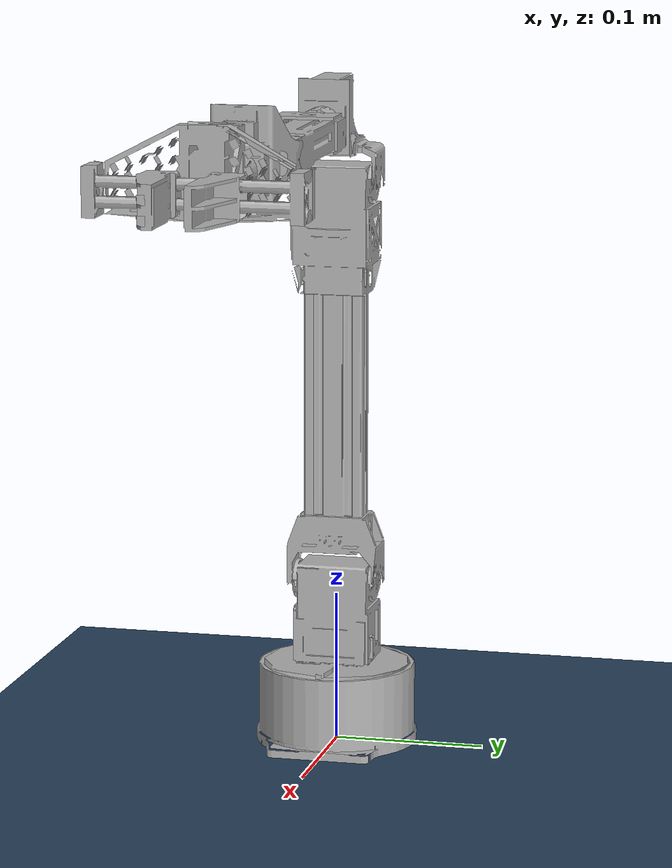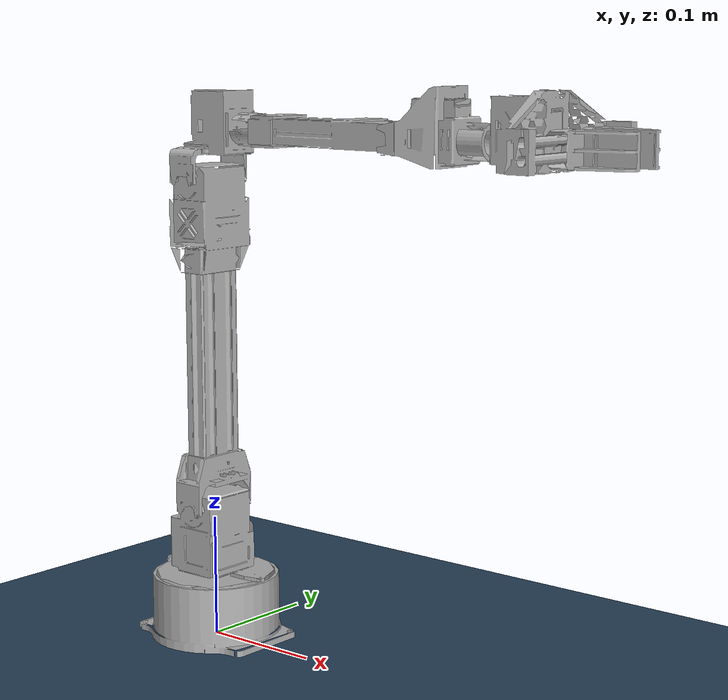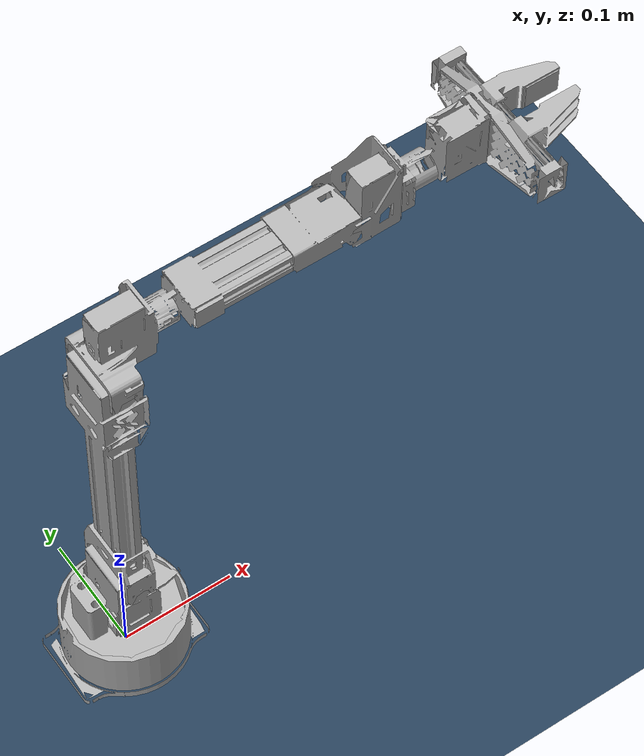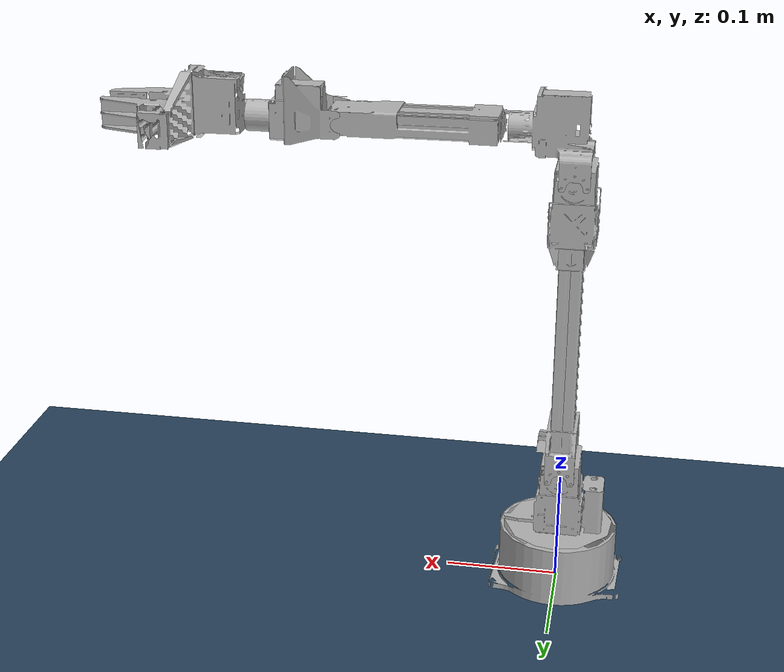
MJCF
<mujoco model="d1_description">
  <default>
    <default class="robot">
      <default class="visual">
        <geom contype="0" conaffinity="0" group="2" />
      </default>
      <default class="collision">
        <geom contype="0" conaffinity="1" group="3" />
      </default>
    </default>
    <default class="floor">
      <geom type="plane" size="0 0 0.05" material="groundplane" />
    </default>
  </default>

  <compiler angle="radian" meshdir="." balanceinertia="true" />

  <visual>
    <global offwidth="3840" offheight="2160" />
  </visual>

  <worldbody>
    <body name="base_link" childclass="robot" pos="0 0 0">
      <geom name="base_link_collision" type="mesh" mesh="base_link_collision_base_link" class="collision" />
      <geom name="base_link_visual" type="mesh" mesh="base_link_base_link" material="default_material" class="visual" />
      <body name="Link1" pos="0 0 0.0533" quat="0 0 0 -1">
        <inertial pos="0.0024649 0.00010517 0.032696" mass="0.13174" diaginertia="6.7236e-05 5.416e-05 4.6637e-05" />
        <joint name="Joint1" type="hinge" range="-2.35 2.35" axis="0 0 1" />
        <geom name="Link1_collision" type="mesh" mesh="Link1_collision_Link1" class="collision" />
        <geom name="Link1_visual" type="mesh" mesh="Link1_Link1" material="default_material" class="visual" />
        <body name="Link2" pos="0 0.028 0.0563" quat="0 0 -0.7071 -0.7071">
          <inertial pos="0.0002018 0.19201 -0.027007" mass="0.20213" diaginertia="0.00025682 6.3307e-05 0.00022968" />
          <joint name="Joint2" type="hinge" range="-1.57 1.57" axis="0 0 -1" />
          <geom name="Link2_collision" type="mesh" mesh="Link2_collision_Link2" class="collision" />
          <geom name="Link2_visual" type="mesh" mesh="Link2_Link2" material="default_material" class="visual" />
          <body name="Link3" pos="0 0.2693 0.0009">
            <inertial pos="0.015164 0.044482 -0.027461" mass="0.0629" diaginertia="1.7232e-05 1.2606e-05 1.4964e-05" />
            <joint name="Joint3" type="hinge" range="-1.57 1.57" axis="0 0 -1" />
            <geom name="Link3_collision" type="mesh" mesh="Link3_collision_Link3" class="collision" />
            <geom name="Link3_visual" type="mesh" mesh="Link3_Link3" material="default_material" class="visual" />
            <body name="Link4" pos="0.0577 0.042 -0.0275" quat="0.5 -0.5 0.5 -0.5">
              <inertial pos="-0.00029556 -0.00016104 0.091339" mass="0.083332" diaginertia="3.9308e-05 3.4378e-05 1.1597e-05" />
              <joint name="Joint4" type="hinge" range="-2.35 2.35" axis="0 0 1" />
              <geom name="Link4_collision" type="mesh" mesh="Link4_collision_Link4" class="collision" />
              <geom name="Link4_visual" type="mesh" mesh="Link4_Link4" material="default_material" class="visual" />
              <body name="Link5" pos="-0.0001 -0.0237 0.14018" quat="0.5 0.5 -0.5 0.5">
                <inertial pos="0.040573 0.0062891 -0.023838" mass="0.053817" diaginertia="1.3072e-05 8.6301e-06 1.1049e-05" />
                <joint name="Joint5" type="hinge" range="-1.57 1.57" axis="0 0 -1" />
                <geom name="Link5_collision" type="mesh" mesh="Link5_collision_Link5" class="collision" />
                <geom name="Link5_visual" type="mesh" mesh="Link5_Link5" material="default_material" class="visual" />
                <body name="Link6" pos="0.0825 -0.0010782 -0.023822" quat="0.5 -0.5 0.5 -0.5">
                  <inertial pos="-0.0068528 -3.9973E-06 0.039705" mass="0.077892" diaginertia="3.8236e-05 1.7707e-05 4.8839e-05" />
                  <joint name="Joint6" type="hinge" range="-2.35 2.35" axis="0 0 -1" />
                  <geom name="Link6_collision" type="mesh" mesh="Link6_collision_Link6" class="collision" />
                  <geom name="Link6_visual" type="mesh" mesh="Link6_Link6" material="default_material" class="visual" />
                  <body name="Link7_1" pos="-0.0056012 -0.029636 0.0706" quat="0.4998 -0.5001 -0.4998 -0.5002">
                    <inertial pos="0.018927 0.006 0.012082" mass="0.015046" diaginertia="1.2692e-06 2.0229e-06 2.6177e-06" />
                    <joint name="Joint7_1" type="slide" range="0 0.03" axis="0 0 -1" />
                    <geom name="Link7_1_collision" type="mesh" mesh="Link7_1_collision_Link7_1" class="collision" />
                    <geom name="Link7_1_visual" type="mesh" mesh="Link7_1_Link7_1" material="default_material" class="visual" />
                  </body>
                  <body name="Link7_2" pos="-0.0056388 0.02964 0.0706" quat="0.5001 0.4998 -0.5001 0.4999">
                    <inertial pos="0.018927 -0.006 0.012082" mass="0.015046" diaginertia="1.2692e-06 2.0229e-06 2.6177e-06" />
                    <joint name="Joint7_2" type="slide" range="-0.03 0" axis="0 0 1" />
                    <geom name="Link7_2_collision" type="mesh" mesh="Link7_2_collision_Link7_2" class="collision" />
                    <geom name="Link7_2_visual" type="mesh" mesh="Link7_2_Link7_2" material="default_material" class="visual" />
                  </body>
                </body>
              </body>
            </body>
          </body>
        </body>
      </body>
      <freejoint name="floating_base" />
    </body>
    <light pos="0 0 2." dir="0 0 -1" directional="true" />
    <geom name="floor" class="floor" size="0 0 0.05" />
  </worldbody>

  <asset>
    <material name="default_material" rgba="0.7 0.7 0.7 1" />
    <mesh name="base_link_collision_base_link" file="meshes/d1_description/meshes/base_link.STL" />
    <mesh name="base_link_base_link" file="meshes/d1_description/meshes/base_link.STL" />
    <mesh name="Link1_collision_Link1" file="meshes/d1_description/meshes/Link1.STL" />
    <mesh name="Link1_Link1" file="meshes/d1_description/meshes/Link1.STL" />
    <mesh name="Link2_collision_Link2" file="meshes/d1_description/meshes/Link2.STL" />
    <mesh name="Link2_Link2" file="meshes/d1_description/meshes/Link2.STL" />
    <mesh name="Link3_collision_Link3" file="meshes/d1_description/meshes/Link3.STL" />
    <mesh name="Link3_Link3" file="meshes/d1_description/meshes/Link3.STL" />
    <mesh name="Link4_collision_Link4" file="meshes/d1_description/meshes/Link4.STL" />
    <mesh name="Link4_Link4" file="meshes/d1_description/meshes/Link4.STL" />
    <mesh name="Link5_collision_Link5" file="meshes/d1_description/meshes/Link5.STL" />
    <mesh name="Link5_Link5" file="meshes/d1_description/meshes/Link5.STL" />
    <mesh name="Link6_collision_Link6" file="meshes/d1_description/meshes/Link6.STL" />
    <mesh name="Link6_Link6" file="meshes/d1_description/meshes/Link6.STL" />
    <mesh name="Link7_1_collision_Link7_1" file="meshes/d1_description/meshes/Link7_1.STL" />
    <mesh name="Link7_1_Link7_1" file="meshes/d1_description/meshes/Link7_1.STL" />
    <mesh name="Link7_2_collision_Link7_2" file="meshes/d1_description/meshes/Link7_2.STL" />
    <mesh name="Link7_2_Link7_2" file="meshes/d1_description/meshes/Link7_2.STL" />
    <texture type="2d" name="groundplane" builtin="checker" mark="edge" rgb1="0.2 0.3 0.4" rgb2="0.1 0.2 0.3" markrgb="0.8 0.8 0.8" width="300" height="300" />
    <material name="groundplane" texture="groundplane" texuniform="true" texrepeat="5 5" reflectance="0.2" />
    <texture type="skybox" builtin="gradient" rgb1="0.3 0.5 0.7" rgb2="0 0 0" width="512" height="3072" />
  </asset>

  <actuator>
    <motor name="Joint1" joint="Joint1" />
    <motor name="Joint2" joint="Joint2" />
    <motor name="Joint3" joint="Joint3" />
    <motor name="Joint4" joint="Joint4" />
    <motor name="Joint5" joint="Joint5" />
    <motor name="Joint6" joint="Joint6" />
    <motor name="Joint7_1" joint="Joint7_1" />
    <motor name="Joint7_2" joint="Joint7_2" />
  </actuator>

  <visual>
    <rgba haze="0.15 0.25 0.35 1" />
  </visual>
</mujoco>
